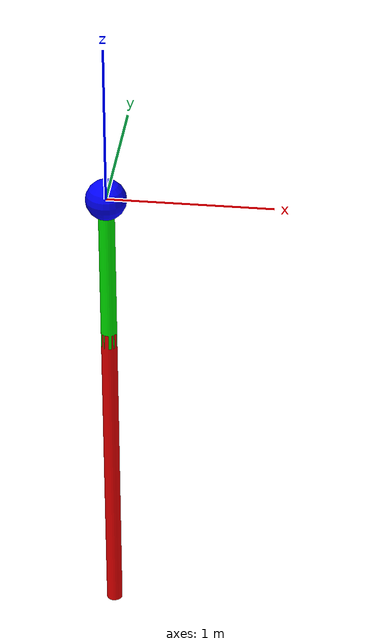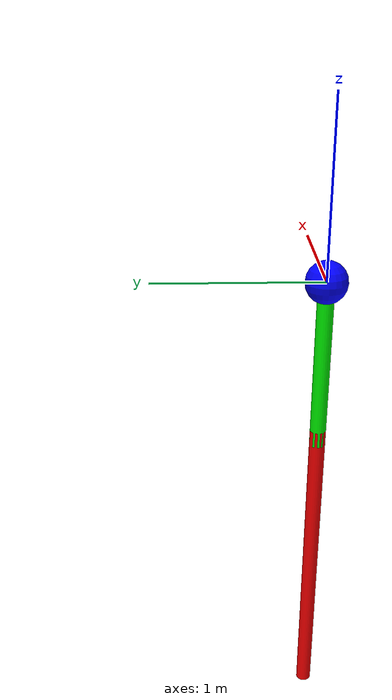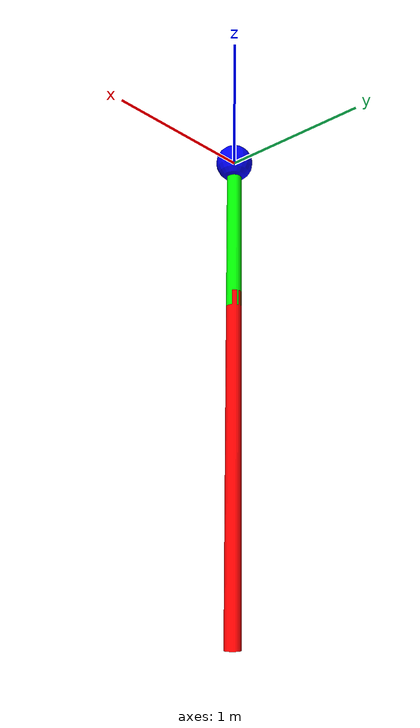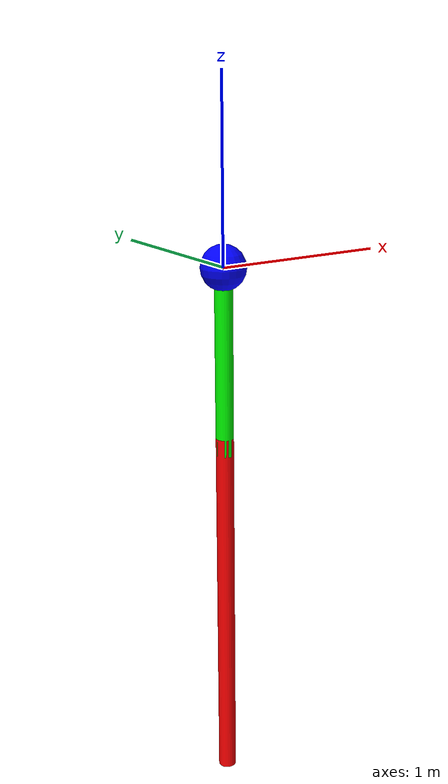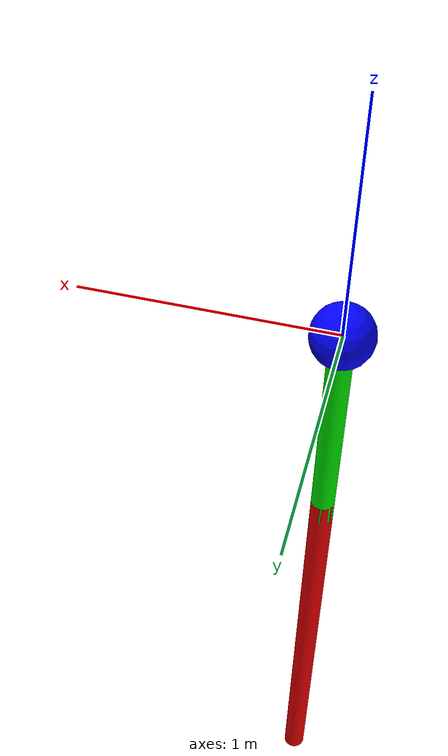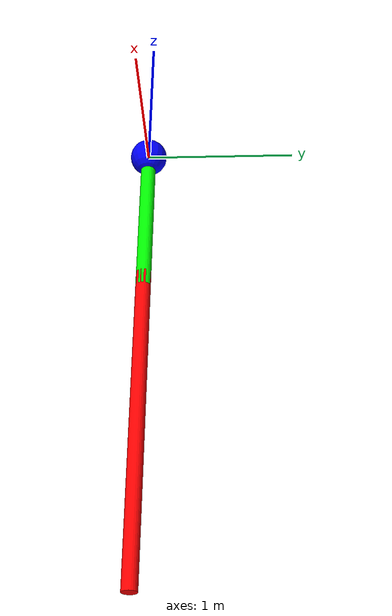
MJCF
<mujoco model="acrobot">
    <worldbody>
        <geom name="Link1_pivot" type="sphere" size="0.125" rgba="0 0 1 1" mass="0"/>
        <body name="Link1" pos="0 0 0">
            <joint name="shoulder" type="hinge" axis="0 1 0" damping="0.5"/>
            <geom name="Link1" type="cylinder" fromto="0 0 0.05 0 0 -1.05" size="0.05" rgba="0 1 0 1" mass="1"/>
            <body name="Link2" pos="0 0 -1">
                <joint name="elbow" type="hinge" axis="0 1 0" damping="0.5"/>
                <geom name="Link2" type="cylinder" fromto="0 0 0.05 0 0 -2.05" size="0.05" rgba="1 0 0 1" mass="1"/>
            </body>
        </body>
    </worldbody>

    <actuator>
        <motor name="elbow" joint="elbow"/>
    </actuator>
</mujoco>
